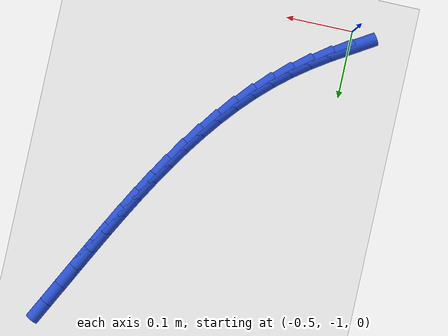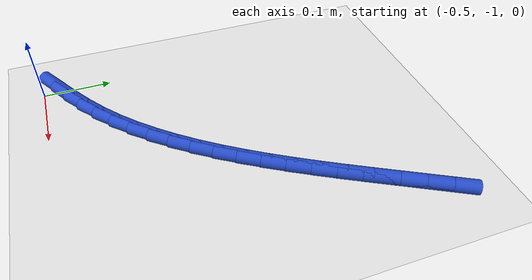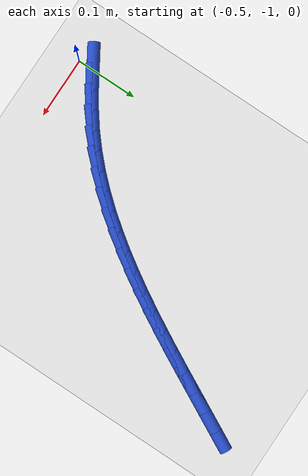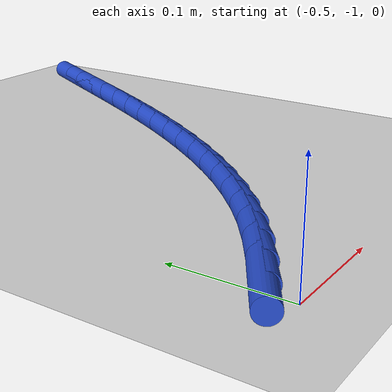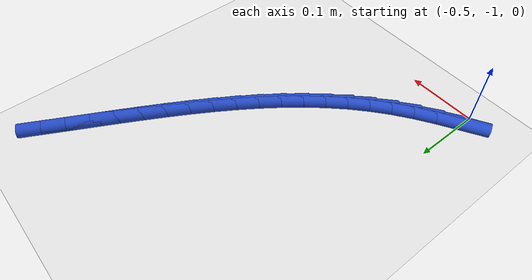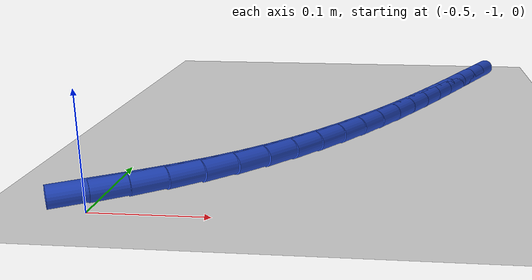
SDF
<sdf version="1.6">
 <world name="default">
  <model name="ground_plane">
   <static>1</static>
   <link name="link">
    <collision name="collision">
     <geometry><plane><normal>0 0 1</normal><size>100 100</size></plane></geometry>
     <surface><friction><ode><mu>100</mu><mu2>50</mu2></ode></friction></surface>
    </collision>
    <visual name="visual">
     <cast_shadows>0</cast_shadows>
     <geometry><plane><normal>0 0 1</normal><size>100 100</size></plane></geometry>
     <material>
      <script><uri>file://media/materials/scripts/gazebo.material</uri><name>Gazebo/WhiteGlow</name></script>
     </material>
    </visual>
   </link>
  </model>
  <model name="line">
   <link name="link_185">
    <pose>-0.5003436373316804 -0.9744524365444428 0.01 0 1.57 0.5505148943213444</pose>
    <collision name="collision">
     <geometry><cylinder><radius>0.01</radius><length>0.08</length></cylinder></geometry>
    </collision>
    <visual name="visual">
     <material>
      <script><name>Gazebo/Blue</name><uri>file://media/materials/scripts/gazebo.material</uri></script>
     </material>
     <geometry><cylinder><radius>0.01</radius><length>0.08</length></cylinder></geometry>
    </visual>
   </link>
   <link name="link_186">
    <pose>-0.4732018533413548 -0.95779243282673 0.01 0 1.57 0.5898555959326907</pose>
    <collision name="collision">
     <geometry><cylinder><radius>0.01</radius><length>0.08</length></cylinder></geometry>
    </collision>
    <visual name="visual">
     <material>
      <script><name>Gazebo/Blue</name><uri>file://media/materials/scripts/gazebo.material</uri></script>
     </material>
     <geometry><cylinder><radius>0.01</radius><length>0.08</length></cylinder></geometry>
    </visual>
   </link>
   <link name="link_187">
    <pose>-0.44696633459480983 -0.9402317795275467 0.01 0 1.57 0.6408566371179325</pose>
    <collision name="collision">
     <geometry><cylinder><radius>0.01</radius><length>0.08</length></cylinder></geometry>
    </collision>
    <visual name="visual">
     <material>
      <script><name>Gazebo/Blue</name><uri>file://media/materials/scripts/gazebo.material</uri></script>
     </material>
     <geometry><cylinder><radius>0.01</radius><length>0.08</length></cylinder></geometry>
    </visual>
   </link>
   <link name="link_188">
    <pose>-0.4218067552890869 -0.9214658485646195 0.01 0 1.57 0.7019130993917752</pose>
    <collision name="collision">
     <geometry><cylinder><radius>0.01</radius><length>0.08</length></cylinder></geometry>
    </collision>
    <visual name="visual">
     <material>
      <script><name>Gazebo/Blue</name><uri>file://media/materials/scripts/gazebo.material</uri></script>
     </material>
     <geometry><cylinder><radius>0.01</radius><length>0.08</length></cylinder></geometry>
    </visual>
   </link>
   <link name="link_189">
    <pose>-0.39787091775809896 -0.901226565800181 0.01 0 1.57 0.7624630025188548</pose>
    <collision name="collision">
     <geometry><cylinder><radius>0.01</radius><length>0.08</length></cylinder></geometry>
    </collision>
    <visual name="visual">
     <material>
      <script><name>Gazebo/Blue</name><uri>file://media/materials/scripts/gazebo.material</uri></script>
     </material>
     <geometry><cylinder><radius>0.01</radius><length>0.08</length></cylinder></geometry>
    </visual>
   </link>
   <link name="link_190">
    <pose>-0.3751435077937401 -0.879518470041664 0.01 0 1.57 0.817660172345398</pose>
    <collision name="collision">
     <geometry><cylinder><radius>0.01</radius><length>0.08</length></cylinder></geometry>
    </collision>
    <visual name="visual">
     <material>
      <script><name>Gazebo/Blue</name><uri>file://media/materials/scripts/gazebo.material</uri></script>
     </material>
     <geometry><cylinder><radius>0.01</radius><length>0.08</length></cylinder></geometry>
    </visual>
   </link>
   <link name="link_191">
    <pose>-0.35353552274515415 -0.8564692539051675 0.01 0 1.57 0.8673755356109716</pose>
    <collision name="collision">
     <geometry><cylinder><radius>0.01</radius><length>0.08</length></cylinder></geometry>
    </collision>
    <visual name="visual">
     <material>
      <script><name>Gazebo/Blue</name><uri>file://media/materials/scripts/gazebo.material</uri></script>
     </material>
     <geometry><cylinder><radius>0.01</radius><length>0.08</length></cylinder></geometry>
    </visual>
   </link>
   <link name="link_192">
    <pose>-0.3329575997816809 -0.8322072119670535 0.01 0 1.57 0.9116433008961337</pose>
    <collision name="collision">
     <geometry><cylinder><radius>0.01</radius><length>0.08</length></cylinder></geometry>
    </collision>
    <visual name="visual">
     <material>
      <script><name>Gazebo/Blue</name><uri>file://media/materials/scripts/gazebo.material</uri></script>
     </material>
     <geometry><cylinder><radius>0.01</radius><length>0.08</length></cylinder></geometry>
    </visual>
   </link>
   <link name="link_193">
    <pose>-0.3133203760726608 -0.8068606388036846 0.01 0 1.57 0.95059301274528</pose>
    <collision name="collision">
     <geometry><cylinder><radius>0.01</radius><length>0.08</length></cylinder></geometry>
    </collision>
    <visual name="visual">
     <material>
      <script><name>Gazebo/Blue</name><uri>file://media/materials/scripts/gazebo.material</uri></script>
     </material>
     <geometry><cylinder><radius>0.01</radius><length>0.08</length></cylinder></geometry>
    </visual>
   </link>
   <link name="link_194">
    <pose>-0.29453448878743393 -0.7805578289914235 0.01 0 1.57 0.9844095474467255</pose>
    <collision name="collision">
     <geometry><cylinder><radius>0.01</radius><length>0.08</length></cylinder></geometry>
    </collision>
    <visual name="visual">
     <material>
      <script><name>Gazebo/Blue</name><uri>file://media/materials/scripts/gazebo.material</uri></script>
     </material>
     <geometry><cylinder><radius>0.01</radius><length>0.08</length></cylinder></geometry>
    </visual>
   </link>
   <link name="link_195">
    <pose>-0.27651057509534044 -0.7534270771066319 0.01 0 1.57 1.0133009986832802</pose>
    <collision name="collision">
     <geometry><cylinder><radius>0.01</radius><length>0.08</length></cylinder></geometry>
    </collision>
    <visual name="visual">
     <material>
      <script><name>Gazebo/Blue</name><uri>file://media/materials/scripts/gazebo.material</uri></script>
     </material>
     <geometry><cylinder><radius>0.01</radius><length>0.08</length></cylinder></geometry>
    </visual>
   </link>
   <link name="link_196">
    <pose>-0.25915927216572154 -0.7255966777256736 0.01 0 1.57 1.037474420104474</pose>
    <collision name="collision">
     <geometry><cylinder><radius>0.01</radius><length>0.08</length></cylinder></geometry>
    </collision>
    <visual name="visual">
     <material>
      <script><name>Gazebo/Blue</name><uri>file://media/materials/scripts/gazebo.material</uri></script>
     </material>
     <geometry><cylinder><radius>0.01</radius><length>0.08</length></cylinder></geometry>
    </visual>
   </link>
   <link name="link_197">
    <pose>-0.24239121716791703 -0.6971949254249105 0.01 0 1.57 1.0571183104177504</pose>
    <collision name="collision">
     <geometry><cylinder><radius>0.01</radius><length>0.08</length></cylinder></geometry>
    </collision>
    <visual name="visual">
     <material>
      <script><name>Gazebo/Blue</name><uri>file://media/materials/scripts/gazebo.material</uri></script>
     </material>
     <geometry><cylinder><radius>0.01</radius><length>0.08</length></cylinder></geometry>
    </visual>
   </link>
   <link name="link_198">
    <pose>-0.2261170472712673 -0.668350114780705 0.01 0 1.57 1.0723903447117944</pose>
    <collision name="collision">
     <geometry><cylinder><radius>0.01</radius><length>0.08</length></cylinder></geometry>
    </collision>
    <visual name="visual">
     <material>
      <script><name>Gazebo/Blue</name><uri>file://media/materials/scripts/gazebo.material</uri></script>
     </material>
     <geometry><cylinder><radius>0.01</radius><length>0.08</length></cylinder></geometry>
    </visual>
   </link>
   <link name="link_199">
    <pose>-0.21024739964511233 -0.6391905403694195 0.01 0 1.57 1.0834088811152083</pose>
    <collision name="collision">
     <geometry><cylinder><radius>0.01</radius><length>0.08</length></cylinder></geometry>
    </collision>
    <visual name="visual">
     <material>
      <script><name>Gazebo/Blue</name><uri>file://media/materials/scripts/gazebo.material</uri></script>
     </material>
     <geometry><cylinder><radius>0.01</radius><length>0.08</length></cylinder></geometry>
    </visual>
   </link>
   <link name="link_200">
    <pose>-0.1946929114587932 -0.6098444967674173 0.01 0 1.57 1.0902469893429168</pose>
    <collision name="collision">
     <geometry><cylinder><radius>0.01</radius><length>0.08</length></cylinder></geometry>
    </collision>
    <visual name="visual">
     <material>
      <script><name>Gazebo/Blue</name><uri>file://media/materials/scripts/gazebo.material</uri></script>
     </material>
     <geometry><cylinder><radius>0.01</radius><length>0.08</length></cylinder></geometry>
    </visual>
   </link>
   <link name="link_201">
    <pose>-0.17936421988164986 -0.5804402785510603 0.01 0 1.57 1.0929280290118184</pose>
    <collision name="collision">
     <geometry><cylinder><radius>0.01</radius><length>0.08</length></cylinder></geometry>
    </collision>
    <visual name="visual">
     <material>
      <script><name>Gazebo/Blue</name><uri>file://media/materials/scripts/gazebo.material</uri></script>
     </material>
     <geometry><cylinder><radius>0.01</radius><length>0.08</length></cylinder></geometry>
    </visual>
   </link>
   <link name="link_202">
    <pose>-0.1641719620830227 -0.5511061802967114 0.01 0 1.57 1.0918211120914059</pose>
    <collision name="collision">
     <geometry><cylinder><radius>0.01</radius><length>0.08</length></cylinder></geometry>
    </collision>
    <visual name="visual">
     <material>
      <script><name>Gazebo/Blue</name><uri>file://media/materials/scripts/gazebo.material</uri></script>
     </material>
     <geometry><cylinder><radius>0.01</radius><length>0.08</length></cylinder></geometry>
    </visual>
   </link>
   <link name="link_203">
    <pose>-0.14903639356045367 -0.5219605877246355 0.01 0 1.57 1.0919749919237192</pose>
    <collision name="collision">
     <geometry><cylinder><radius>0.01</radius><length>0.08</length></cylinder></geometry>
    </collision>
    <visual name="visual">
     <material>
      <script><name>Gazebo/Blue</name><uri>file://media/materials/scripts/gazebo.material</uri></script>
     </material>
     <geometry><cylinder><radius>0.01</radius><length>0.08</length></cylinder></geometry>
    </visual>
   </link>
  </model>
 </world>
</sdf>
